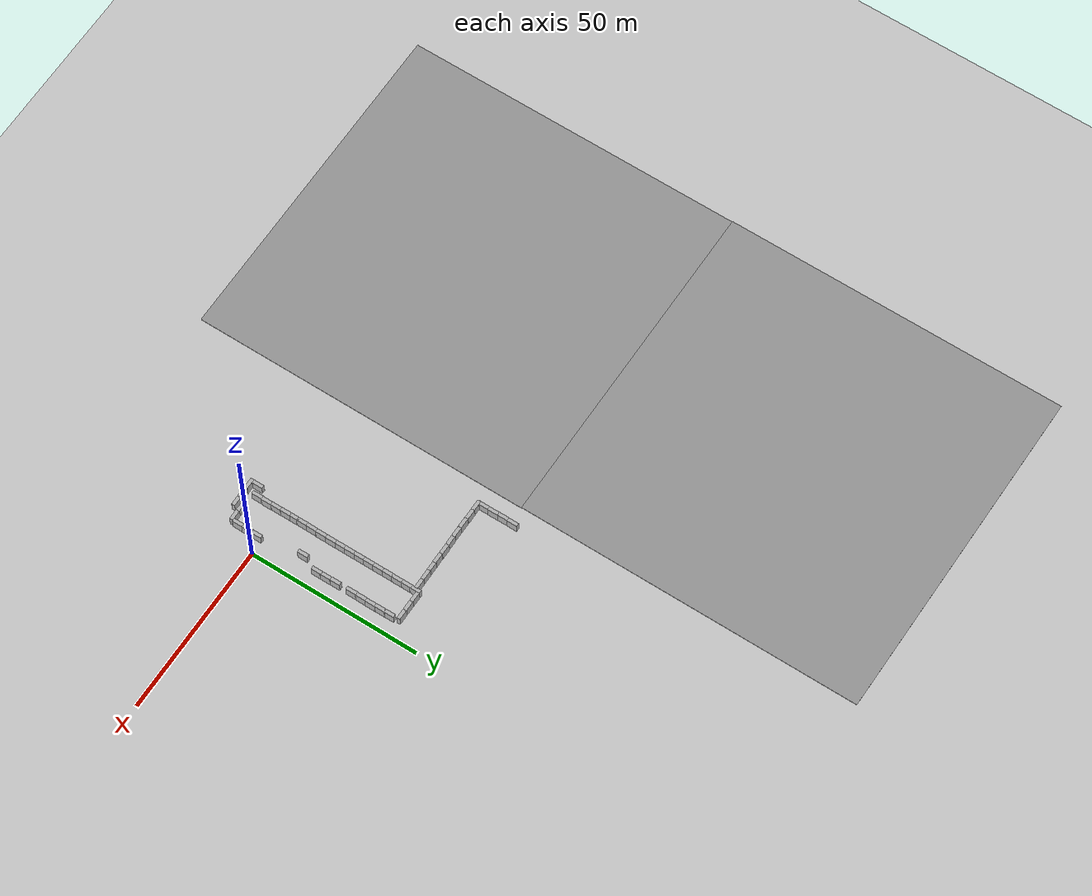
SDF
<sdf version="1.6">
 <world name="default">
  <model name="ground_plane">
   <static>1</static>
   <link name="link">
    <collision name="collision">
     <geometry><plane><normal>0 0 1</normal><size>100 100</size></plane></geometry>
     <surface>
      <contact><collide_bitmask>65535</collide_bitmask></contact>
      <friction><ode><mu>100</mu><mu2>50</mu2></ode></friction>
     </surface>
    </collision>
    <visual name="visual">
     <cast_shadows>0</cast_shadows>
     <geometry><plane><normal>0 0 1</normal><size>100 100</size></plane></geometry>
     <material>
      <script><uri>file://media/materials/scripts/gazebo.material</uri><name>Gazebo/Grey</name></script>
     </material>
    </visual>
   </link>
  </model>
  <model name="brick_box_3x1x3">
   <static>1</static>
   <link name="chassis">
    <pose>0 0 1.5 0 -0 0</pose>
    <collision name="collision"><geometry><box><size>3 1 3</size></box></geometry></collision>
    <visual name="visual">
     <geometry><mesh><uri>model://brick_box_3x1x3/meshes/simple_box.dae</uri><scale>3 1 3</scale></mesh></geometry>
     <material>
      <script>
       <uri>model://brick_box_3x1x3/materials/scripts</uri>
       <uri>model://brick_box_3x1x3/materials/textures</uri>
       <name>BrickBox/Diffuse</name>
      </script>
     </material>
    </visual>
   </link>
   <pose>-8.43725 -9.24492 0 0 -0 0</pose>
  </model>
  <model name="brick_box_3x1x3_clone">
   <static>1</static>
   <link name="chassis">
    <pose>0 0 1.5 0 -0 0</pose>
    <collision name="collision"><geometry><box><size>3 1 3</size></box></geometry></collision>
    <visual name="visual">
     <geometry><mesh><uri>model://brick_box_3x1x3/meshes/simple_box.dae</uri><scale>3 1 3</scale></mesh></geometry>
     <material>
      <script>
       <uri>model://brick_box_3x1x3/materials/scripts</uri>
       <uri>model://brick_box_3x1x3/materials/textures</uri>
       <name>BrickBox/Diffuse</name>
      </script>
     </material>
    </visual>
   </link>
   <pose>-5.50912 -9.21959 0 0 -0 0</pose>
  </model>
  <model name="brick_box_3x1x3_1_clone_9_clone_3">
   <static>1</static>
   <link name="chassis">
    <pose>0 0 1.5 0 -0 0</pose>
    <collision name="collision"><geometry><box><size>3 1 3</size></box></geometry></collision>
    <visual name="visual">
     <geometry><mesh><uri>model://brick_box_3x1x3/meshes/simple_box.dae</uri><scale>3 1 3</scale></mesh></geometry>
     <material>
      <script>
       <uri>model://brick_box_3x1x3/materials/scripts</uri>
       <uri>model://brick_box_3x1x3/materials/textures</uri>
       <name>BrickBox/Diffuse</name>
      </script>
     </material>
    </visual>
   </link>
   <pose>-4.24524 -7.21647 0 0 0 -1.56611</pose>
  </model>
  <model name="brick_box_3x1x3_1_clone_9_clone_4">
   <static>1</static>
   <link name="chassis">
    <pose>0 0 1.5 0 -0 0</pose>
    <collision name="collision"><geometry><box><size>3 1 3</size></box></geometry></collision>
    <visual name="visual">
     <geometry><mesh><uri>model://brick_box_3x1x3/meshes/simple_box.dae</uri><scale>3 1 3</scale></mesh></geometry>
     <material>
      <script>
       <uri>model://brick_box_3x1x3/materials/scripts</uri>
       <uri>model://brick_box_3x1x3/materials/textures</uri>
       <name>BrickBox/Diffuse</name>
      </script>
     </material>
    </visual>
   </link>
   <pose>-4.23572 -4.2771 0 0 0 -1.56611</pose>
  </model>
  <model name="brick_box_3x1x3_1_clone_9_clone_5">
   <static>1</static>
   <link name="chassis">
    <pose>0 0 1.5 0 -0 0</pose>
    <collision name="collision"><geometry><box><size>3 1 3</size></box></geometry></collision>
    <visual name="visual">
     <geometry><mesh><uri>model://brick_box_3x1x3/meshes/simple_box.dae</uri><scale>3 1 3</scale></mesh></geometry>
     <material>
      <script>
       <uri>model://brick_box_3x1x3/materials/scripts</uri>
       <uri>model://brick_box_3x1x3/materials/textures</uri>
       <name>BrickBox/Diffuse</name>
      </script>
     </material>
    </visual>
   </link>
   <pose>-4.19878 -1.42485 0 0 0 -1.56611</pose>
  </model>
  <model name="brick_box_3x1x3_1_clone_9_clone_11">
   <static>1</static>
   <link name="chassis">
    <pose>0 0 1.5 0 -0 0</pose>
    <collision name="collision"><geometry><box><size>3 1 3</size></box></geometry></collision>
    <visual name="visual">
     <geometry><mesh><uri>model://brick_box_3x1x3/meshes/simple_box.dae</uri><scale>3 1 3</scale></mesh></geometry>
     <material>
      <script>
       <uri>model://brick_box_3x1x3/materials/scripts</uri>
       <uri>model://brick_box_3x1x3/materials/textures</uri>
       <name>BrickBox/Diffuse</name>
      </script>
     </material>
    </visual>
   </link>
   <pose>-4.18049 17.0711 0 0 0 -1.56611</pose>
  </model>
  <model name="brick_box_3x1x3_1_clone_9_clone_12">
   <static>1</static>
   <link name="chassis">
    <pose>0 0 1.5 0 -0 0</pose>
    <collision name="collision"><geometry><box><size>3 1 3</size></box></geometry></collision>
    <visual name="visual">
     <geometry><mesh><uri>model://brick_box_3x1x3/meshes/simple_box.dae</uri><scale>3 1 3</scale></mesh></geometry>
     <material>
      <script>
       <uri>model://brick_box_3x1x3/materials/scripts</uri>
       <uri>model://brick_box_3x1x3/materials/textures</uri>
       <name>BrickBox/Diffuse</name>
      </script>
     </material>
    </visual>
   </link>
   <pose>-4.18553 19.7897 0 0 0 -1.56611</pose>
  </model>
  <model name="brick_box_3x1x3_1_clone_9_clone_13">
   <static>1</static>
   <link name="chassis">
    <pose>0 0 1.5 0 -0 0</pose>
    <collision name="collision"><geometry><box><size>3 1 3</size></box></geometry></collision>
    <visual name="visual">
     <geometry><mesh><uri>model://brick_box_3x1x3/meshes/simple_box.dae</uri><scale>3 1 3</scale></mesh></geometry>
     <material>
      <script>
       <uri>model://brick_box_3x1x3/materials/scripts</uri>
       <uri>model://brick_box_3x1x3/materials/textures</uri>
       <name>BrickBox/Diffuse</name>
      </script>
     </material>
    </visual>
   </link>
   <pose>-4.24067 22.7372 0 0 0 -1.56611</pose>
  </model>
  <model name="brick_box_3x1x3_1_clone_9_clone_14">
   <static>1</static>
   <link name="chassis">
    <pose>0 0 1.5 0 -0 0</pose>
    <collision name="collision"><geometry><box><size>3 1 3</size></box></geometry></collision>
    <visual name="visual">
     <geometry><mesh><uri>model://brick_box_3x1x3/meshes/simple_box.dae</uri><scale>3 1 3</scale></mesh></geometry>
     <material>
      <script>
       <uri>model://brick_box_3x1x3/materials/scripts</uri>
       <uri>model://brick_box_3x1x3/materials/textures</uri>
       <name>BrickBox/Diffuse</name>
      </script>
     </material>
    </visual>
   </link>
   <pose>-4.30763 27.5913 0 0 0 -1.56611</pose>
  </model>
  <model name="brick_box_3x1x3_1_clone_9_clone_15">
   <static>1</static>
   <link name="chassis">
    <pose>0 0 1.5 0 -0 0</pose>
    <collision name="collision"><geometry><box><size>3 1 3</size></box></geometry></collision>
    <visual name="visual">
     <geometry><mesh><uri>model://brick_box_3x1x3/meshes/simple_box.dae</uri><scale>3 1 3</scale></mesh></geometry>
     <material>
      <script>
       <uri>model://brick_box_3x1x3/materials/scripts</uri>
       <uri>model://brick_box_3x1x3/materials/textures</uri>
       <name>BrickBox/Diffuse</name>
      </script>
     </material>
    </visual>
   </link>
   <pose>-4.27386 30.5416 0 0 0 -1.56611</pose>
  </model>
  <model name="brick_box_3x1x3_1_clone_9_clone_16">
   <static>1</static>
   <link name="chassis">
    <pose>0 0 1.5 0 -0 0</pose>
    <collision name="collision"><geometry><box><size>3 1 3</size></box></geometry></collision>
    <visual name="visual">
     <geometry><mesh><uri>model://brick_box_3x1x3/meshes/simple_box.dae</uri><scale>3 1 3</scale></mesh></geometry>
     <material>
      <script>
       <uri>model://brick_box_3x1x3/materials/scripts</uri>
       <uri>model://brick_box_3x1x3/materials/textures</uri>
       <name>BrickBox/Diffuse</name>
      </script>
     </material>
    </visual>
   </link>
   <pose>-4.23923 33.4794 0 0 0 -1.56611</pose>
  </model>
  <model name="brick_box_3x1x3_1_clone_9_clone_17">
   <static>1</static>
   <link name="chassis">
    <pose>0 0 1.5 0 -0 0</pose>
    <collision name="collision"><geometry><box><size>3 1 3</size></box></geometry></collision>
    <visual name="visual">
     <geometry><mesh><uri>model://brick_box_3x1x3/meshes/simple_box.dae</uri><scale>3 1 3</scale></mesh></geometry>
     <material>
      <script>
       <uri>model://brick_box_3x1x3/materials/scripts</uri>
       <uri>model://brick_box_3x1x3/materials/textures</uri>
       <name>BrickBox/Diffuse</name>
      </script>
     </material>
    </visual>
   </link>
   <pose>-4.28106 36.2821 0 0 0 -1.56611</pose>
  </model>
  <model name="brick_box_3x1x3_1_clone_9_clone_18">
   <static>1</static>
   <link name="chassis">
    <pose>0 0 1.5 0 -0 0</pose>
    <collision name="collision"><geometry><box><size>3 1 3</size></box></geometry></collision>
    <visual name="visual">
     <geometry><mesh><uri>model://brick_box_3x1x3/meshes/simple_box.dae</uri><scale>3 1 3</scale></mesh></geometry>
     <material>
      <script>
       <uri>model://brick_box_3x1x3/materials/scripts</uri>
       <uri>model://brick_box_3x1x3/materials/textures</uri>
       <name>BrickBox/Diffuse</name>
      </script>
     </material>
    </visual>
   </link>
   <pose>-4.32062 39.0668 0 0 0 -1.56611</pose>
  </model>
  <model name="brick_box_3x1x3_1_clone_9_clone_19">
   <static>1</static>
   <link name="chassis">
    <pose>0 0 1.5 0 -0 0</pose>
    <collision name="collision"><geometry><box><size>3 1 3</size></box></geometry></collision>
    <visual name="visual">
     <geometry><mesh><uri>model://brick_box_3x1x3/meshes/simple_box.dae</uri><scale>3 1 3</scale></mesh></geometry>
     <material>
      <script>
       <uri>model://brick_box_3x1x3/materials/scripts</uri>
       <uri>model://brick_box_3x1x3/materials/textures</uri>
       <name>BrickBox/Diffuse</name>
      </script>
     </material>
    </visual>
   </link>
   <pose>-13.3774 -7.66303 0 0 0 -1.56611</pose>
  </model>
  <model name="brick_box_3x1x3_1_clone_9_clone_20">
   <static>1</static>
   <link name="chassis">
    <pose>0 0 1.5 0 -0 0</pose>
    <collision name="collision"><geometry><box><size>3 1 3</size></box></geometry></collision>
    <visual name="visual">
     <geometry><mesh><uri>model://brick_box_3x1x3/meshes/simple_box.dae</uri><scale>3 1 3</scale></mesh></geometry>
     <material>
      <script>
       <uri>model://brick_box_3x1x3/materials/scripts</uri>
       <uri>model://brick_box_3x1x3/materials/textures</uri>
       <name>BrickBox/Diffuse</name>
      </script>
     </material>
    </visual>
   </link>
   <pose>-13.3027 -4.66895 0 0 0 -1.56611</pose>
  </model>
  <model name="brick_box_3x1x3_1_clone_9_clone_21">
   <static>1</static>
   <link name="chassis">
    <pose>0 0 1.5 0 -0 0</pose>
    <collision name="collision"><geometry><box><size>3 1 3</size></box></geometry></collision>
    <visual name="visual">
     <geometry><mesh><uri>model://brick_box_3x1x3/meshes/simple_box.dae</uri><scale>3 1 3</scale></mesh></geometry>
     <material>
      <script>
       <uri>model://brick_box_3x1x3/materials/scripts</uri>
       <uri>model://brick_box_3x1x3/materials/textures</uri>
       <name>BrickBox/Diffuse</name>
      </script>
     </material>
    </visual>
   </link>
   <pose>-13.3488 -1.80189 0 0 0 -1.56611</pose>
  </model>
  <model name="brick_box_3x1x3_1_clone_9_clone_22">
   <static>1</static>
   <link name="chassis">
    <pose>0 0 1.5 0 -0 0</pose>
    <collision name="collision"><geometry><box><size>3 1 3</size></box></geometry></collision>
    <visual name="visual">
     <geometry><mesh><uri>model://brick_box_3x1x3/meshes/simple_box.dae</uri><scale>3 1 3</scale></mesh></geometry>
     <material>
      <script>
       <uri>model://brick_box_3x1x3/materials/scripts</uri>
       <uri>model://brick_box_3x1x3/materials/textures</uri>
       <name>BrickBox/Diffuse</name>
      </script>
     </material>
    </visual>
   </link>
   <pose>-13.395 1.07203 0 0 0 -1.56611</pose>
  </model>
  <model name="brick_box_3x1x3_1_clone_9_clone_23">
   <static>1</static>
   <link name="chassis">
    <pose>0 0 1.5 0 -0 0</pose>
    <collision name="collision"><geometry><box><size>3 1 3</size></box></geometry></collision>
    <visual name="visual">
     <geometry><mesh><uri>model://brick_box_3x1x3/meshes/simple_box.dae</uri><scale>3 1 3</scale></mesh></geometry>
     <material>
      <script>
       <uri>model://brick_box_3x1x3/materials/scripts</uri>
       <uri>model://brick_box_3x1x3/materials/textures</uri>
       <name>BrickBox/Diffuse</name>
      </script>
     </material>
    </visual>
   </link>
   <pose>-13.4105 3.69281 0 0 0 -1.56611</pose>
  </model>
  <model name="brick_box_3x1x3_1_clone_9_clone_24">
   <static>1</static>
   <link name="chassis">
    <pose>0 0 1.5 0 -0 0</pose>
    <collision name="collision"><geometry><box><size>3 1 3</size></box></geometry></collision>
    <visual name="visual">
     <geometry><mesh><uri>model://brick_box_3x1x3/meshes/simple_box.dae</uri><scale>3 1 3</scale></mesh></geometry>
     <material>
      <script>
       <uri>model://brick_box_3x1x3/materials/scripts</uri>
       <uri>model://brick_box_3x1x3/materials/textures</uri>
       <name>BrickBox/Diffuse</name>
      </script>
     </material>
    </visual>
   </link>
   <pose>-13.4195 6.18906 0 0 0 -1.56611</pose>
  </model>
  <model name="brick_box_3x1x3_1_clone_9_clone_25">
   <static>1</static>
   <link name="chassis">
    <pose>0 0 1.5 0 -0 0</pose>
    <collision name="collision"><geometry><box><size>3 1 3</size></box></geometry></collision>
    <visual name="visual">
     <geometry><mesh><uri>model://brick_box_3x1x3/meshes/simple_box.dae</uri><scale>3 1 3</scale></mesh></geometry>
     <material>
      <script>
       <uri>model://brick_box_3x1x3/materials/scripts</uri>
       <uri>model://brick_box_3x1x3/materials/textures</uri>
       <name>BrickBox/Diffuse</name>
      </script>
     </material>
    </visual>
   </link>
   <pose>-13.4114 9.13655 0 0 0 -1.56611</pose>
  </model>
  <model name="brick_box_3x1x3_1_clone_9_clone_26">
   <static>1</static>
   <link name="chassis">
    <pose>0 0 1.5 0 -0 0</pose>
    <collision name="collision"><geometry><box><size>3 1 3</size></box></geometry></collision>
    <visual name="visual">
     <geometry><mesh><uri>model://brick_box_3x1x3/meshes/simple_box.dae</uri><scale>3 1 3</scale></mesh></geometry>
     <material>
      <script>
       <uri>model://brick_box_3x1x3/materials/scripts</uri>
       <uri>model://brick_box_3x1x3/materials/textures</uri>
       <name>BrickBox/Diffuse</name>
      </script>
     </material>
    </visual>
   </link>
   <pose>-13.3582 12.0734 0 0 0 -1.56611</pose>
  </model>
  <model name="brick_box_3x1x3_1_clone_9_clone_27">
   <static>1</static>
   <link name="chassis">
    <pose>0 0 1.5 0 -0 0</pose>
    <collision name="collision"><geometry><box><size>3 1 3</size></box></geometry></collision>
    <visual name="visual">
     <geometry><mesh><uri>model://brick_box_3x1x3/meshes/simple_box.dae</uri><scale>3 1 3</scale></mesh></geometry>
     <material>
      <script>
       <uri>model://brick_box_3x1x3/materials/scripts</uri>
       <uri>model://brick_box_3x1x3/materials/textures</uri>
       <name>BrickBox/Diffuse</name>
      </script>
     </material>
    </visual>
   </link>
   <pose>-13.3501 15.0809 0 0 0 -1.56611</pose>
  </model>
  <model name="brick_box_3x1x3_1_clone_9_clone_28">
   <static>1</static>
   <link name="chassis">
    <pose>0 0 1.5 0 -0 0</pose>
    <collision name="collision"><geometry><box><size>3 1 3</size></box></geometry></collision>
    <visual name="visual">
     <geometry><mesh><uri>model://brick_box_3x1x3/meshes/simple_box.dae</uri><scale>3 1 3</scale></mesh></geometry>
     <material>
      <script>
       <uri>model://brick_box_3x1x3/materials/scripts</uri>
       <uri>model://brick_box_3x1x3/materials/textures</uri>
       <name>BrickBox/Diffuse</name>
      </script>
     </material>
    </visual>
   </link>
   <pose>-13.369 17.9505 0 0 0 -1.56611</pose>
  </model>
  <model name="brick_box_3x1x3_1_clone_9_clone_29">
   <static>1</static>
   <link name="chassis">
    <pose>0 0 1.5 0 -0 0</pose>
    <collision name="collision"><geometry><box><size>3 1 3</size></box></geometry></collision>
    <visual name="visual">
     <geometry><mesh><uri>model://brick_box_3x1x3/meshes/simple_box.dae</uri><scale>3 1 3</scale></mesh></geometry>
     <material>
      <script>
       <uri>model://brick_box_3x1x3/materials/scripts</uri>
       <uri>model://brick_box_3x1x3/materials/textures</uri>
       <name>BrickBox/Diffuse</name>
      </script>
     </material>
    </visual>
   </link>
   <pose>-13.382 20.8031 0 0 0 -1.56611</pose>
  </model>
  <model name="brick_box_3x1x3_1_clone_9_clone_30">
   <static>1</static>
   <link name="chassis">
    <pose>0 0 1.5 0 -0 0</pose>
    <collision name="collision"><geometry><box><size>3 1 3</size></box></geometry></collision>
    <visual name="visual">
     <geometry><mesh><uri>model://brick_box_3x1x3/meshes/simple_box.dae</uri><scale>3 1 3</scale></mesh></geometry>
     <material>
      <script>
       <uri>model://brick_box_3x1x3/materials/scripts</uri>
       <uri>model://brick_box_3x1x3/materials/textures</uri>
       <name>BrickBox/Diffuse</name>
      </script>
     </material>
    </visual>
   </link>
   <pose>-13.3992 23.7204 0 0 0 -1.56611</pose>
  </model>
  <model name="brick_box_3x1x3_1_clone_9_clone_31">
   <static>1</static>
   <link name="chassis">
    <pose>0 0 1.5 0 -0 0</pose>
    <collision name="collision"><geometry><box><size>3 1 3</size></box></geometry></collision>
    <visual name="visual">
     <geometry><mesh><uri>model://brick_box_3x1x3/meshes/simple_box.dae</uri><scale>3 1 3</scale></mesh></geometry>
     <material>
      <script>
       <uri>model://brick_box_3x1x3/materials/scripts</uri>
       <uri>model://brick_box_3x1x3/materials/textures</uri>
       <name>BrickBox/Diffuse</name>
      </script>
     </material>
    </visual>
   </link>
   <pose>-13.4117 26.621 0 0 0 -1.56611</pose>
  </model>
  <model name="brick_box_3x1x3_1_clone_9_clone_32">
   <static>1</static>
   <link name="chassis">
    <pose>0 0 1.5 0 -0 0</pose>
    <collision name="collision"><geometry><box><size>3 1 3</size></box></geometry></collision>
    <visual name="visual">
     <geometry><mesh><uri>model://brick_box_3x1x3/meshes/simple_box.dae</uri><scale>3 1 3</scale></mesh></geometry>
     <material>
      <script>
       <uri>model://brick_box_3x1x3/materials/scripts</uri>
       <uri>model://brick_box_3x1x3/materials/textures</uri>
       <name>BrickBox/Diffuse</name>
      </script>
     </material>
    </visual>
   </link>
   <pose>-13.4162 29.464 0 0 0 -1.56611</pose>
  </model>
  <model name="brick_box_3x1x3_1_clone_9_clone_33">
   <static>1</static>
   <link name="chassis">
    <pose>0 0 1.5 0 -0 0</pose>
    <collision name="collision"><geometry><box><size>3 1 3</size></box></geometry></collision>
    <visual name="visual">
     <geometry><mesh><uri>model://brick_box_3x1x3/meshes/simple_box.dae</uri><scale>3 1 3</scale></mesh></geometry>
     <material>
      <script>
       <uri>model://brick_box_3x1x3/materials/scripts</uri>
       <uri>model://brick_box_3x1x3/materials/textures</uri>
       <name>BrickBox/Diffuse</name>
      </script>
     </material>
    </visual>
   </link>
   <pose>-13.4266 32.3881 0 0 0 -1.56611</pose>
  </model>
  <model name="brick_box_3x1x3_1_clone_9_clone_34">
   <static>1</static>
   <link name="chassis">
    <pose>0 0 1.5 0 -0 0</pose>
    <collision name="collision"><geometry><box><size>3 1 3</size></box></geometry></collision>
    <visual name="visual">
     <geometry><mesh><uri>model://brick_box_3x1x3/meshes/simple_box.dae</uri><scale>3 1 3</scale></mesh></geometry>
     <material>
      <script>
       <uri>model://brick_box_3x1x3/materials/scripts</uri>
       <uri>model://brick_box_3x1x3/materials/textures</uri>
       <name>BrickBox/Diffuse</name>
      </script>
     </material>
    </visual>
   </link>
   <pose>-13.4127 35.2327 0 0 0 -1.56611</pose>
  </model>
  <model name="brick_box_3x1x3_1_clone_9_clone_35">
   <static>1</static>
   <link name="chassis">
    <pose>0 0 1.5 0 -0 0</pose>
    <collision name="collision"><geometry><box><size>3 1 3</size></box></geometry></collision>
    <visual name="visual">
     <geometry><mesh><uri>model://brick_box_3x1x3/meshes/simple_box.dae</uri><scale>3 1 3</scale></mesh></geometry>
     <material>
      <script>
       <uri>model://brick_box_3x1x3/materials/scripts</uri>
       <uri>model://brick_box_3x1x3/materials/textures</uri>
       <name>BrickBox/Diffuse</name>
      </script>
     </material>
    </visual>
   </link>
   <pose>-13.4386 38.097 0 0 0 -1.56611</pose>
  </model>
  <model name="brick_box_3x1x3_1_clone_9_clone_36">
   <static>1</static>
   <link name="chassis">
    <pose>0 0 1.5 0 -0 0</pose>
    <collision name="collision"><geometry><box><size>3 1 3</size></box></geometry></collision>
    <visual name="visual">
     <geometry><mesh><uri>model://brick_box_3x1x3/meshes/simple_box.dae</uri><scale>3 1 3</scale></mesh></geometry>
     <material>
      <script>
       <uri>model://brick_box_3x1x3/materials/scripts</uri>
       <uri>model://brick_box_3x1x3/materials/textures</uri>
       <name>BrickBox/Diffuse</name>
      </script>
     </material>
    </visual>
   </link>
   <pose>-13.4426 40.7738 0 0 0 -1.56611</pose>
  </model>
  <model name="brick_box_3x1x3_2_clone_clone_13_clone_11_clone">
   <static>1</static>
   <link name="chassis">
    <pose>0 0 1.5 0 -0 0</pose>
    <collision name="collision"><geometry><box><size>3 1 3</size></box></geometry></collision>
    <visual name="visual">
     <geometry><mesh><uri>model://brick_box_3x1x3/meshes/simple_box.dae</uri><scale>3 1 3</scale></mesh></geometry>
     <material>
      <script>
       <uri>model://brick_box_3x1x3/materials/scripts</uri>
       <uri>model://brick_box_3x1x3/materials/textures</uri>
       <name>BrickBox/Diffuse</name>
      </script>
     </material>
    </visual>
   </link>
   <pose>-11.533 41.7711 0 0 -0 0</pose>
  </model>
  <model name="brick_box_3x1x3_2_clone_clone_13_clone_11_clone_0">
   <static>1</static>
   <link name="chassis">
    <pose>0 0 1.5 0 -0 0</pose>
    <collision name="collision"><geometry><box><size>3 1 3</size></box></geometry></collision>
    <visual name="visual">
     <geometry><mesh><uri>model://brick_box_3x1x3/meshes/simple_box.dae</uri><scale>3 1 3</scale></mesh></geometry>
     <material>
      <script>
       <uri>model://brick_box_3x1x3/materials/scripts</uri>
       <uri>model://brick_box_3x1x3/materials/textures</uri>
       <name>BrickBox/Diffuse</name>
      </script>
     </material>
    </visual>
   </link>
   <pose>-8.6328 41.7732 0 0 -0 0</pose>
  </model>
  <model name="brick_box_3x1x3_2_clone_clone_13_clone_11_clone_1">
   <static>1</static>
   <link name="chassis">
    <pose>0 0 1.5 0 -0 0</pose>
    <collision name="collision"><geometry><box><size>3 1 3</size></box></geometry></collision>
    <visual name="visual">
     <geometry><mesh><uri>model://brick_box_3x1x3/meshes/simple_box.dae</uri><scale>3 1 3</scale></mesh></geometry>
     <material>
      <script>
       <uri>model://brick_box_3x1x3/materials/scripts</uri>
       <uri>model://brick_box_3x1x3/materials/textures</uri>
       <name>BrickBox/Diffuse</name>
      </script>
     </material>
    </visual>
   </link>
   <pose>-5.76992 41.7865 0 0 -0 0</pose>
  </model>
  <model name="brick_box_3x1x3_1_clone_9_clone_9_clone">
   <static>1</static>
   <link name="chassis">
    <pose>0 0 1.5 0 -0 0</pose>
    <collision name="collision"><geometry><box><size>3 1 3</size></box></geometry></collision>
    <visual name="visual">
     <geometry><mesh><uri>model://brick_box_3x1x3/meshes/simple_box.dae</uri><scale>3 1 3</scale></mesh></geometry>
     <material>
      <script>
       <uri>model://brick_box_3x1x3/materials/scripts</uri>
       <uri>model://brick_box_3x1x3/materials/textures</uri>
       <name>BrickBox/Diffuse</name>
      </script>
     </material>
    </visual>
   </link>
   <pose>-6.16208 11.4856 0 0 0 -1.56611</pose>
  </model>
  <model name="brick_box_3x1x3_clone_13">
   <static>1</static>
   <link name="chassis">
    <pose>0 0 1.5 0 -0 0</pose>
    <collision name="collision"><geometry><box><size>3 1 3</size></box></geometry></collision>
    <visual name="visual">
     <geometry><mesh><uri>model://brick_box_3x1x3/meshes/simple_box.dae</uri><scale>3 1 3</scale></mesh></geometry>
     <material>
      <script>
       <uri>model://brick_box_3x1x3/materials/scripts</uri>
       <uri>model://brick_box_3x1x3/materials/textures</uri>
       <name>BrickBox/Diffuse</name>
      </script>
     </material>
    </visual>
   </link>
   <pose>-9.14688 -11.1668 0 0 -0 0</pose>
  </model>
  <model name="brick_box_3x1x3_clone_14">
   <static>1</static>
   <link name="chassis">
    <pose>0 0 1.5 0 -0 0</pose>
    <collision name="collision"><geometry><box><size>3 1 3</size></box></geometry></collision>
    <visual name="visual">
     <geometry><mesh><uri>model://brick_box_3x1x3/meshes/simple_box.dae</uri><scale>3 1 3</scale></mesh></geometry>
     <material>
      <script>
       <uri>model://brick_box_3x1x3/materials/scripts</uri>
       <uri>model://brick_box_3x1x3/materials/textures</uri>
       <name>BrickBox/Diffuse</name>
      </script>
     </material>
    </visual>
   </link>
   <pose>-11.8187 -11.2042 0 0 -0 0</pose>
  </model>
  <model name="brick_box_3x1x3_clone_15">
   <static>1</static>
   <link name="chassis">
    <pose>0 0 1.5 0 -0 0</pose>
    <collision name="collision"><geometry><box><size>3 1 3</size></box></geometry></collision>
    <visual name="visual">
     <geometry><mesh><uri>model://brick_box_3x1x3/meshes/simple_box.dae</uri><scale>3 1 3</scale></mesh></geometry>
     <material>
      <script>
       <uri>model://brick_box_3x1x3/materials/scripts</uri>
       <uri>model://brick_box_3x1x3/materials/textures</uri>
       <name>BrickBox/Diffuse</name>
      </script>
     </material>
    </visual>
   </link>
   <pose>-14.8332 -11.2677 0 0 -0 0</pose>
  </model>
  <model name="brick_box_3x1x3_1_clone_9_clone_19_clone">
   <static>1</static>
   <link name="chassis">
    <pose>0 0 1.5 0 -0 0</pose>
    <collision name="collision"><geometry><box><size>3 1 3</size></box></geometry></collision>
    <visual name="visual">
     <geometry><mesh><uri>model://brick_box_3x1x3/meshes/simple_box.dae</uri><scale>3 1 3</scale></mesh></geometry>
     <material>
      <script>
       <uri>model://brick_box_3x1x3/materials/scripts</uri>
       <uri>model://brick_box_3x1x3/materials/textures</uri>
       <name>BrickBox/Diffuse</name>
      </script>
     </material>
    </visual>
   </link>
   <pose>-15.8955 -9.24176 0 0 0 -1.56611</pose>
  </model>
  <model name="ground_plane_1">
   <static>1</static>
   <link name="link">
    <collision name="collision">
     <geometry><plane><normal>0 0 1</normal><size>100 100</size></plane></geometry>
     <surface>
      <contact><collide_bitmask>65535</collide_bitmask></contact>
      <friction><ode><mu>100</mu><mu2>50</mu2></ode></friction>
     </surface>
    </collision>
    <visual name="visual">
     <cast_shadows>0</cast_shadows>
     <geometry><plane><normal>0 0 1</normal><size>100 100</size></plane></geometry>
     <material>
      <script><uri>file://media/materials/scripts/gazebo.material</uri><name>Gazebo/Grey</name></script>
     </material>
    </visual>
   </link>
   <pose>-98.0041 -0.133606 0 0 -0 0</pose>
  </model>
  <model name="ground_plane_2">
   <static>1</static>
   <link name="link">
    <collision name="collision">
     <geometry><plane><normal>0 0 1</normal><size>100 100</size></plane></geometry>
     <surface>
      <contact><collide_bitmask>65535</collide_bitmask></contact>
      <friction><ode><mu>100</mu><mu2>50</mu2></ode></friction>
     </surface>
    </collision>
    <visual name="visual">
     <cast_shadows>0</cast_shadows>
     <geometry><plane><normal>0 0 1</normal><size>100 100</size></plane></geometry>
     <material>
      <script><uri>file://media/materials/scripts/gazebo.material</uri><name>Gazebo/Grey</name></script>
     </material>
    </visual>
   </link>
   <pose>-98.1542 99.5749 0 0 -0 0</pose>
  </model>
  <model name="brick_box_3x1x3_1_clone_9_clone_34_clone">
   <static>1</static>
   <link name="chassis">
    <pose>0 0 1.5 0 -0 0</pose>
    <collision name="collision"><geometry><box><size>3 1 3</size></box></geometry></collision>
    <visual name="visual">
     <geometry><mesh><uri>model://brick_box_3x1x3/meshes/simple_box.dae</uri><scale>3 1 3</scale></mesh></geometry>
     <material>
      <script>
       <uri>model://brick_box_3x1x3/materials/scripts</uri>
       <uri>model://brick_box_3x1x3/materials/textures</uri>
       <name>BrickBox/Diffuse</name>
      </script>
     </material>
    </visual>
   </link>
   <pose>-42.2999 50.8148 0 0 0 -1.56611</pose>
  </model>
  <model name="brick_box_3x1x3_1_clone_9_clone_34_clone_0">
   <static>1</static>
   <link name="chassis">
    <pose>0 0 1.5 0 -0 0</pose>
    <collision name="collision"><geometry><box><size>3 1 3</size></box></geometry></collision>
    <visual name="visual">
     <geometry><mesh><uri>model://brick_box_3x1x3/meshes/simple_box.dae</uri><scale>3 1 3</scale></mesh></geometry>
     <material>
      <script>
       <uri>model://brick_box_3x1x3/materials/scripts</uri>
       <uri>model://brick_box_3x1x3/materials/textures</uri>
       <name>BrickBox/Diffuse</name>
      </script>
     </material>
    </visual>
   </link>
   <pose>-42.3437 47.9416 0 0 0 -1.56611</pose>
  </model>
  <model name="brick_box_3x1x3_1_clone_9_clone_34_clone_1">
   <static>1</static>
   <link name="chassis">
    <pose>0 0 1.5 0 -0 0</pose>
    <collision name="collision"><geometry><box><size>3 1 3</size></box></geometry></collision>
    <visual name="visual">
     <geometry><mesh><uri>model://brick_box_3x1x3/meshes/simple_box.dae</uri><scale>3 1 3</scale></mesh></geometry>
     <material>
      <script>
       <uri>model://brick_box_3x1x3/materials/scripts</uri>
       <uri>model://brick_box_3x1x3/materials/textures</uri>
       <name>BrickBox/Diffuse</name>
      </script>
     </material>
    </visual>
   </link>
   <pose>-42.2892 44.9692 0 0 0 -1.56611</pose>
  </model>
  <model name="brick_box_3x1x3_1_clone_9_clone_34_clone_2">
   <static>1</static>
   <link name="chassis">
    <pose>0 0 1.5 0 -0 0</pose>
    <collision name="collision"><geometry><box><size>3 1 3</size></box></geometry></collision>
    <visual name="visual">
     <geometry><mesh><uri>model://brick_box_3x1x3/meshes/simple_box.dae</uri><scale>3 1 3</scale></mesh></geometry>
     <material>
      <script>
       <uri>model://brick_box_3x1x3/materials/scripts</uri>
       <uri>model://brick_box_3x1x3/materials/textures</uri>
       <name>BrickBox/Diffuse</name>
      </script>
     </material>
    </visual>
   </link>
   <pose>-42.3096 42 0 0 0 -1.56611</pose>
  </model>
  <model name="brick_box_3x1x3_3">
   <static>1</static>
   <link name="chassis">
    <pose>0 0 1.5 0 -0 0</pose>
    <collision name="collision"><geometry><box><size>3 1 3</size></box></geometry></collision>
    <visual name="visual">
     <geometry><mesh><uri>model://brick_box_3x1x3/meshes/simple_box.dae</uri><scale>3 1 3</scale></mesh></geometry>
     <material>
      <script>
       <uri>model://brick_box_3x1x3/materials/scripts</uri>
       <uri>model://brick_box_3x1x3/materials/textures</uri>
       <name>BrickBox/Diffuse</name>
      </script>
     </material>
    </visual>
   </link>
   <pose>-15.2319 40.6532 0 0 -0 0</pose>
  </model>
  <model name="brick_box_3x1x3_3_clone">
   <static>1</static>
   <link name="chassis">
    <pose>0 0 1.5 0 -0 0</pose>
    <collision name="collision"><geometry><box><size>3 1 3</size></box></geometry></collision>
    <visual name="visual">
     <geometry><mesh><uri>model://brick_box_3x1x3/meshes/simple_box.dae</uri><scale>3 1 3</scale></mesh></geometry>
     <material>
      <script>
       <uri>model://brick_box_3x1x3/materials/scripts</uri>
       <uri>model://brick_box_3x1x3/materials/textures</uri>
       <name>BrickBox/Diffuse</name>
      </script>
     </material>
    </visual>
   </link>
   <pose>-18.1295 40.6211 0 0 -0 0</pose>
  </model>
  <model name="brick_box_3x1x3_3_clone_0">
   <static>1</static>
   <link name="chassis">
    <pose>0 0 1.5 0 -0 0</pose>
    <collision name="collision"><geometry><box><size>3 1 3</size></box></geometry></collision>
    <visual name="visual">
     <geometry><mesh><uri>model://brick_box_3x1x3/meshes/simple_box.dae</uri><scale>3 1 3</scale></mesh></geometry>
     <material>
      <script>
       <uri>model://brick_box_3x1x3/materials/scripts</uri>
       <uri>model://brick_box_3x1x3/materials/textures</uri>
       <name>BrickBox/Diffuse</name>
      </script>
     </material>
    </visual>
   </link>
   <pose>-20.9169 40.5825 0 0 -0 0</pose>
  </model>
  <model name="brick_box_3x1x3_3_clone_1">
   <static>1</static>
   <link name="chassis">
    <pose>0 0 1.5 0 -0 0</pose>
    <collision name="collision"><geometry><box><size>3 1 3</size></box></geometry></collision>
    <visual name="visual">
     <geometry><mesh><uri>model://brick_box_3x1x3/meshes/simple_box.dae</uri><scale>3 1 3</scale></mesh></geometry>
     <material>
      <script>
       <uri>model://brick_box_3x1x3/materials/scripts</uri>
       <uri>model://brick_box_3x1x3/materials/textures</uri>
       <name>BrickBox/Diffuse</name>
      </script>
     </material>
    </visual>
   </link>
   <pose>-23.6592 40.5232 0 0 -0 0</pose>
  </model>
  <model name="brick_box_3x1x3_3_clone_2">
   <static>1</static>
   <link name="chassis">
    <pose>0 0 1.5 0 -0 0</pose>
    <collision name="collision"><geometry><box><size>3 1 3</size></box></geometry></collision>
    <visual name="visual">
     <geometry><mesh><uri>model://brick_box_3x1x3/meshes/simple_box.dae</uri><scale>3 1 3</scale></mesh></geometry>
     <material>
      <script>
       <uri>model://brick_box_3x1x3/materials/scripts</uri>
       <uri>model://brick_box_3x1x3/materials/textures</uri>
       <name>BrickBox/Diffuse</name>
      </script>
     </material>
    </visual>
   </link>
   <pose>-26.6193 40.5522 0 0 -0 0</pose>
  </model>
  <model name="brick_box_3x1x3_3_clone_3">
   <static>1</static>
   <link name="chassis">
    <pose>0 0 1.5 0 -0 0</pose>
    <collision name="collision"><geometry><box><size>3 1 3</size></box></geometry></collision>
    <visual name="visual">
     <geometry><mesh><uri>model://brick_box_3x1x3/meshes/simple_box.dae</uri><scale>3 1 3</scale></mesh></geometry>
     <material>
      <script>
       <uri>model://brick_box_3x1x3/materials/scripts</uri>
       <uri>model://brick_box_3x1x3/materials/textures</uri>
       <name>BrickBox/Diffuse</name>
      </script>
     </material>
    </visual>
   </link>
   <pose>-29.4117 40.4803 0 0 -0 0</pose>
  </model>
  <model name="brick_box_3x1x3_3_clone_4">
   <static>1</static>
   <link name="chassis">
    <pose>0 0 1.5 0 -0 0</pose>
    <collision name="collision"><geometry><box><size>3 1 3</size></box></geometry></collision>
    <visual name="visual">
     <geometry><mesh><uri>model://brick_box_3x1x3/meshes/simple_box.dae</uri><scale>3 1 3</scale></mesh></geometry>
     <material>
      <script>
       <uri>model://brick_box_3x1x3/materials/scripts</uri>
       <uri>model://brick_box_3x1x3/materials/textures</uri>
       <name>BrickBox/Diffuse</name>
      </script>
     </material>
    </visual>
   </link>
   <pose>-32.3169 40.4174 0 0 -0 0</pose>
  </model>
  <model name="brick_box_3x1x3_3_clone_5">
   <static>1</static>
   <link name="chassis">
    <pose>0 0 1.5 0 -0 0</pose>
    <collision name="collision"><geometry><box><size>3 1 3</size></box></geometry></collision>
    <visual name="visual">
     <geometry><mesh><uri>model://brick_box_3x1x3/meshes/simple_box.dae</uri><scale>3 1 3</scale></mesh></geometry>
     <material>
      <script>
       <uri>model://brick_box_3x1x3/materials/scripts</uri>
       <uri>model://brick_box_3x1x3/materials/textures</uri>
       <name>BrickBox/Diffuse</name>
      </script>
     </material>
    </visual>
   </link>
   <pose>-35.3527 40.4141 0 0 -0 0</pose>
  </model>
  <model name="brick_box_3x1x3_3_clone_6">
   <static>1</static>
   <link name="chassis">
    <pose>0 0 1.5 0 -0 0</pose>
    <collision name="collision"><geometry><box><size>3 1 3</size></box></geometry></collision>
    <visual name="visual">
     <geometry><mesh><uri>model://brick_box_3x1x3/meshes/simple_box.dae</uri><scale>3 1 3</scale></mesh></geometry>
     <material>
      <script>
       <uri>model://brick_box_3x1x3/materials/scripts</uri>
       <uri>model://brick_box_3x1x3/materials/textures</uri>
       <name>BrickBox/Diffuse</name>
      </script>
     </material>
    </visual>
   </link>
   <pose>-38.3231 40.4574 0 0 -0 0</pose>
  </model>
  <model name="brick_box_3x1x3_3_clone_7">
   <static>1</static>
   <link name="chassis">
    <pose>0 0 1.5 0 -0 0</pose>
    <collision name="collision"><geometry><box><size>3 1 3</size></box></geometry></collision>
    <visual name="visual">
     <geometry><mesh><uri>model://brick_box_3x1x3/meshes/simple_box.dae</uri><scale>3 1 3</scale></mesh></geometry>
     <material>
      <script>
       <uri>model://brick_box_3x1x3/materials/scripts</uri>
       <uri>model://brick_box_3x1x3/materials/textures</uri>
       <name>BrickBox/Diffuse</name>
      </script>
     </material>
    </visual>
   </link>
   <pose>-41.2016 40.4079 0 0 -0 0</pose>
  </model>
 </world>
</sdf>
